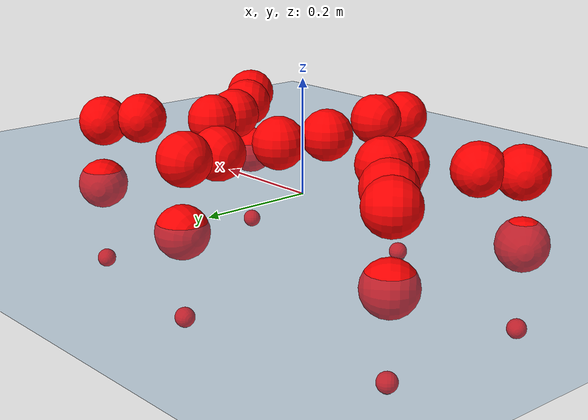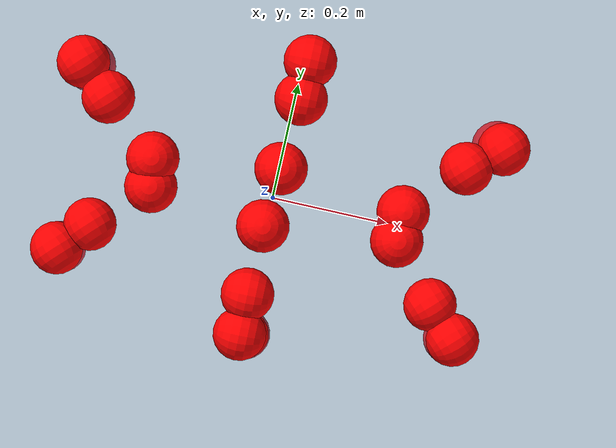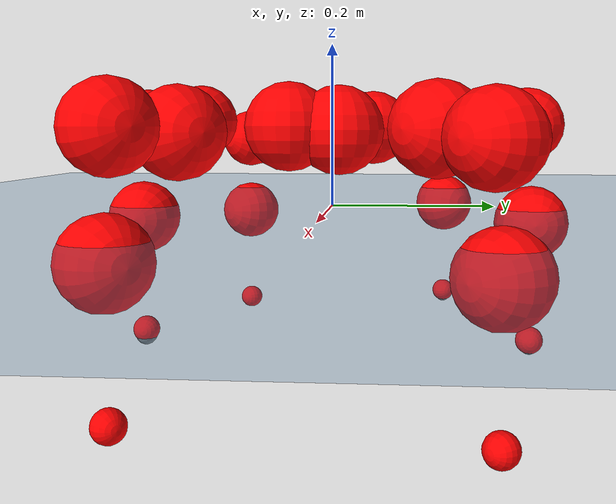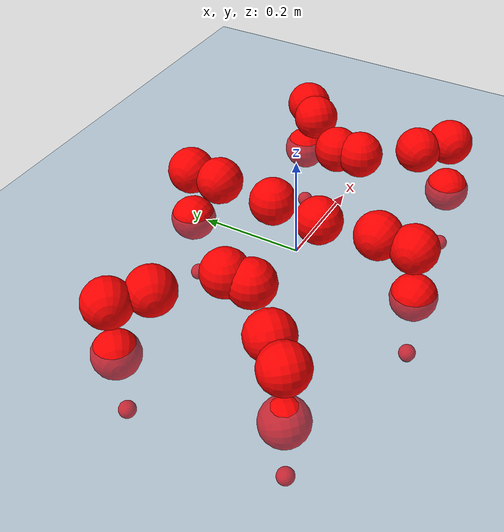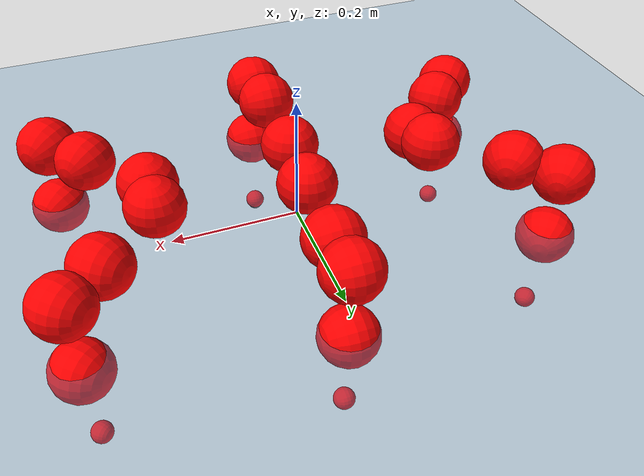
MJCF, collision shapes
<mujoco model="Golem">
  <compiler angle="radian" assetdir="assets" balanceinertia="true" inertiafromgeom="false"/>

  <option timestep="0.005" density="1.2" viscosity="2e-05"/>

  <size nkey="1"/>

  <visual>
    <quality shadowsize="8192"/>
    <map shadowclip="0.5"/>
  </visual>

  <default>
    <default class="/">
      <joint armature="0.01" damping="0.01" frictionloss="0.01"/>
      <geom contype="0" conaffinity="0" group="1" solref="-1000 -80"/>
      <site size="0.01 0.005 0.005" group="5"/>
      <general forcelimited="true" biastype="affine" gainprm="25" biasprm="0 -25 -0.5"/>
      <default class="visual">
        <geom type="mesh" group="2"/>
      </default>
      <default class="collision">
        <geom group="3"/>
      </default>
      <default class="foot">
        <geom size="0.01 0 0" condim="6" group="4" priority="1" solimp="0.015 1 0.01"/>
      </default>
      <default class="reward_collision_sphere">
        <geom group="5" rgba="1 0 0 1"/>
      </default>
    </default>
  </default>

  <asset>
    <texture type="skybox" colorspace="auto" name="//unnamed_texture_0" builtin="gradient" rgb1="0.95 0.95 0.95" rgb2="0.95 0.95 0.95" width="100" height="600"/>
    <texture type="2d" colorspace="auto" name="texplane" builtin="checker" rgb1="0.345 0.575 0.748" rgb2="0.345 0.575 0.748" markrgb="1 1 1" width="512" height="512"/>
    <material name="MatPlane" class="/" texture="texplane" texuniform="true" texrepeat="2 2" specular="0.9"/>
    <mesh name="body" class="/" file="body.stl" scale="0.001 0.001 0.001"/>
    <mesh name="coxa" class="/" file="coxa.stl" scale="0.001 0.001 0.001"/>
    <mesh name="femur" class="/" file="femur.stl" scale="0.001 0.001 0.001"/>
    <mesh name="tibia" class="/" file="tibia.stl" scale="0.001 0.001 0.001"/>
    <mesh name="tarsus" class="/" file="tarsus.stl" scale="0.001 0.001 0.001"/>
  </asset>

  <worldbody>
    <geom name="floor" class="/" size="100 100 0.125" type="plane" group="0" material="MatPlane"/>
    <light name="toplight_shadow" class="/" pos="0 0 5" dir="0.0990148 0.0990148 -0.990148" type="directional" ambient="0.04 0.04 0.04" diffuse="0.55 0.55 0.55" specular="0.12 0.12 0.12"/>
    <light name="toplight_fill" class="/" pos="0 0 5" dir="0.0990148 0.0990148 -0.990148" type="directional" castshadow="false" ambient="0.04 0.04 0.04" diffuse="0.3 0.3 0.3" specular="0.08 0.08 0.08"/>
    <body name="trunk" pos="0.00165774 0.000274985 0.00701693" quat="1 0.000435308 -0.000299474 -0.000554083">
      <inertial pos="0.000656954 -0.005029 0.00509284" quat="0.999989 -0.00384448 0.00242057 -0.000742237" mass="4.92864" diaginertia="0.0425979 0.00115576 0.0418862"/>
      <joint name="//unnamed_joint_0" type="free"/>
      <geom name="//unnamed_geom_1" class="/" pos="0 0 0.0864592" quat="1 0 0 0" type="mesh" rgba="0.9 0.9 0.9 1" mesh="body"/>
      <site name="imu" class="/" pos="0.182641 -0.00157205 0.106618" size="0.0112093"/>
      <camera name="track" class="/" pos="0 -1.31208 0" quat="0.707107 0.707107 0 0" mode="trackcom"/>
      <camera name="ego_camera" class="/" pos="0.176256 0 0.135093" quat="-0.5 -0.5 0.5 0.5"/>
      <body name="coxa_RR" pos="-0.234541 -0.0550213 0.082757" quat="0.384307 0.00397823 0.000354396 -0.923197">
        <inertial pos="0.00815204 0.00302893 0.00213919" quat="0.999571 0.0115423 -0.0139821 0.0229871" mass="0.272504" diaginertia="0.0459778 0.00122105 0.0485811"/>
        <joint name="coxa_joint_RR" class="/" pos="0 0 0" axis="0.00256697 -0.00769708 -0.999967" stiffness="0.00789133" range="-3.10871 3.17209" armature="0.0110466" damping="0" frictionloss="0.00790305"/>
        <geom name="//unnamed_geom_2" class="/" type="mesh" rgba="0.2 0.2 0.2 1" mesh="coxa"/>
        <geom name="//unnamed_geom_3" class="reward_collision_sphere" size="0.0448371" pos="-0.0406745 0 0"/>
        <body name="femur_RR" pos="0.0799839 -0.00199366 -0.00452154" quat="0.499907 -0.49998 0.500156 0.499958">
          <inertial pos="-0.00245238 0.000729542 -0.00689443" quat="1 -0.000350386 -0.000689163 -1.91705e-05" mass="0.287992" diaginertia="0.0471199 0.00125156 0.0505269"/>
          <joint name="femur_joint_RR" class="/" pos="0 0 0" axis="0.0295456 0.000560124 -0.999563" range="-3.12996 3.12554" armature="0.0120955" damping="0.0282563" frictionloss="0.0110735"/>
          <geom name="//unnamed_geom_4" class="/" type="mesh" rgba="0.9 0.9 0.9 1" mesh="femur"/>
          <geom name="//unnamed_geom_5" class="reward_collision_sphere" size="0.0448371"/>
          <body name="tibia_RR" pos="0.00411199 -0.0693128 0.00312979" quat="0.000100125 1 0.000104194 6.69623e-05">
            <inertial pos="0.00126839 -0.00604643 0.00697538" quat="0.999541 0.00809364 -0.00188744 0.0291333" mass="0.280331" diaginertia="0.0501299 0.00126835 0.0469066"/>
            <joint name="tibia_joint_RR" class="/" pos="0 0 0" axis="-0.00225303 -0.00858163 0.999961" stiffness="0.00679623" range="-3.14402 3.22146" armature="0.0103541" damping="0" frictionloss="0.0123399"/>
            <geom name="//unnamed_geom_6" class="/" type="mesh" rgba="0.2 0.2 0.2 1" mesh="tibia"/>
            <geom name="//unnamed_geom_7" class="reward_collision_sphere" size="0.0448371"/>
            <body name="tarsus_RR" pos="0.118421 0.00647387 0.00247647" quat="0.999995 -0.00194993 6.63126e-05 0.00259738">
              <inertial pos="0.0812803 0.00790303 -0.000608983" quat="0.503444 0.494178 0.50187 0.500459" mass="0.295979" diaginertia="0.0453925 0.00109854 0.0444248"/>
              <joint name="tarsus_joint_RR" class="/" pos="0 0 0" axis="0.00313657 -0.00709369 0.99997" stiffness="0.00396549" range="-3.15196 3.09403" armature="0.0116349" damping="0.0258785" frictionloss="0.0102047"/>
              <geom name="//unnamed_geom_8" class="/" type="mesh" rgba="0.9 0.9 0.9 1" mesh="tarsus"/>
              <geom name="foot_1" class="foot" size="0.0105209" pos="0.151852 0 0" quat="0 -0.707107 0 0.707107"/>
              <geom name="//unnamed_geom_10" class="reward_collision_sphere" size="0.0448371"/>
              <geom name="//unnamed_geom_11" class="reward_collision_sphere" size="0.0168139" pos="0.14575 0 0"/>
              <site name="foot_1" class="foot" pos="0.151852 0 0" quat="0 -0.707107 0 0.707107" size="0.0112093"/>
            </body>
          </body>
        </body>
      </body>
      <body name="coxa_RM" pos="-0.00793623 -0.0903998 0.0891584" quat="0.707285 -0.00180099 0.000796254 -0.706926">
        <inertial pos="0.000609668 0.00293074 0.00887551" quat="0.999998 -0.00147889 0.000790828 0.00146026" mass="0.294187" diaginertia="0.051089 0.00138027 0.0471106"/>
        <joint name="coxa_joint_RM" class="/" pos="0 0 0" axis="0.00268699 -0.00633377 -0.999976" range="-3.15372 3.1026" armature="0.0121461" damping="0.0103354" frictionloss="0.00947246"/>
        <geom name="//unnamed_geom_12" class="/" type="mesh" rgba="0.2 0.2 0.2 1" mesh="coxa"/>
        <geom name="//unnamed_geom_13" class="reward_collision_sphere" size="0.0448371" pos="-0.0406745 0 0"/>
        <body name="femur_RM" pos="0.0762755 7.89657e-06 0.00940383" quat="0.497624 -0.503097 0.498512 0.500749">
          <inertial pos="-0.00123297 0.00299212 0.00178357" quat="0.999311 0.0337649 0.0149065 -0.00392908" mass="0.285898" diaginertia="0.0425828 0.00124593 0.0442461"/>
          <joint name="femur_joint_RM" class="/" pos="0 0 0" axis="0.000128333 -3.05341e-05 -1" stiffness="0.00448386" range="-3.02997 3.02818" armature="0.00653758" damping="0" frictionloss="0.0101011"/>
          <geom name="//unnamed_geom_14" class="/" type="mesh" rgba="0.9 0.9 0.9 1" mesh="femur"/>
          <geom name="//unnamed_geom_15" class="reward_collision_sphere" size="0.0448371"/>
          <body name="tibia_RM" pos="0.00503381 -0.0678854 0.000822247" quat="-0.000164949 1 -7.47696e-05 -5.70863e-05">
            <inertial pos="8.61907e-05 0.0024433 0.00660116" quat="0.999656 -0.0191437 0.000840093 0.0178993" mass="0.326101" diaginertia="0.0487119 0.00129885 0.0441697"/>
            <joint name="tibia_joint_RM" class="/" pos="0 0 0" axis="0.00674817 0.00309522 0.999972" range="-3.03523 3.25101" armature="0.0143705" damping="0.0146975" frictionloss="0.0112537"/>
            <geom name="//unnamed_geom_16" class="/" type="mesh" rgba="0.2 0.2 0.2 1" mesh="tibia"/>
            <geom name="//unnamed_geom_17" class="reward_collision_sphere" size="0.0448371"/>
            <body name="tarsus_RM" pos="0.116046 0.0052669 -0.00789654" quat="1 0.000351402 0.000147282 -0.0002442">
              <inertial pos="0.0823617 0.00151116 0.00122102" quat="0.512167 0.508798 0.486405 0.492158" mass="0.282409" diaginertia="0.0451504 0.00121945 0.0444058"/>
              <joint name="tarsus_joint_RM" class="/" pos="0 0 0" axis="-0.00116348 0.00564198 0.999983" stiffness="0.0251044" range="-3.09655 2.95619" armature="0.0112398" damping="0.0419591" frictionloss="0.0103399"/>
              <geom name="//unnamed_geom_18" class="/" type="mesh" rgba="0.9 0.9 0.9 1" mesh="tarsus"/>
              <geom name="foot_2" class="foot" size="0.0138034" pos="0.151852 0 0" quat="0 -0.707107 0 0.707107"/>
              <geom name="//unnamed_geom_20" class="reward_collision_sphere" size="0.0448371"/>
              <geom name="//unnamed_geom_21" class="reward_collision_sphere" size="0.0168139" pos="0.14575 0 0"/>
              <site name="foot_2" class="foot" pos="0.151852 0 0" quat="0 -0.707107 0 0.707107" size="0.0112093"/>
            </body>
          </body>
        </body>
      </body>
      <body name="coxa_RF" pos="0.244933 -0.0542287 0.0917196" quat="0.922674 0.000260757 -0.000706917 -0.385579">
        <inertial pos="-0.00671809 0.0064057 -0.00152941" quat="0.999982 0.00478873 -0.00350702 0.000330043" mass="0.275799" diaginertia="0.0425338 0.00118546 0.0462939"/>
        <joint name="coxa_joint_RF" class="/" pos="0 0 0" axis="-0.0223879 -0.0200871 -0.999548" range="-3.15244 3.09845" armature="0.0106047" damping="0.0211053" frictionloss="0.0115753"/>
        <geom name="//unnamed_geom_22" class="/" type="mesh" rgba="0.2 0.2 0.2 1" mesh="coxa"/>
        <geom name="//unnamed_geom_23" class="reward_collision_sphere" size="0.0448371" pos="-0.0406745 0 0"/>
        <body name="femur_RF" pos="0.0797559 -0.00922854 -0.00569083" quat="0.501114 -0.497303 0.503195 0.498366">
          <inertial pos="0.00173747 -0.00239019 0.00118434" quat="0.999921 -0.0111656 0.00345361 0.00469498" mass="0.286924" diaginertia="0.0467947 0.00126724 0.0445439"/>
          <joint name="femur_joint_RF" class="/" pos="0 0 0" axis="0.00149419 -1.78307e-05 -0.999999" stiffness="0.020616" range="-3.17487 3.09194" armature="0.00984526" damping="0.00733891" frictionloss="0.010178"/>
          <geom name="//unnamed_geom_24" class="/" type="mesh" rgba="0.9 0.9 0.9 1" mesh="femur"/>
          <geom name="//unnamed_geom_25" class="reward_collision_sphere" size="0.0448371"/>
          <body name="tibia_RF" pos="-0.00558349 -0.0692729 0.000997055" quat="-0.000419364 1 4.27941e-05 0.000588864">
            <inertial pos="-0.00284782 0.0049643 0.000726324" quat="0.999989 0.000500207 0.00315929 0.00328556" mass="0.307847" diaginertia="0.0507134 0.00131515 0.0456092"/>
            <joint name="tibia_joint_RF" class="/" pos="0 0 0" axis="-0.00901374 0.0029886 0.999955" stiffness="0.0289922" range="-3.0992 3.24743" armature="0.0109747" damping="0.0571711" frictionloss="0.0110266"/>
            <geom name="//unnamed_geom_26" class="/" type="mesh" rgba="0.2 0.2 0.2 1" mesh="tibia"/>
            <geom name="//unnamed_geom_27" class="reward_collision_sphere" size="0.0448371"/>
            <body name="tarsus_RF" pos="0.118871 0.00652334 -0.00077583" quat="0.999998 0.00171703 -0.000443162 0.000781368">
              <inertial pos="0.0817113 0.00195803 0.000707995" quat="0.500419 0.499345 0.499082 0.501152" mass="0.283472" diaginertia="0.0465002 0.00114507 0.0472752"/>
              <joint name="tarsus_joint_RF" class="/" pos="0 0 0" axis="-0.00887762 0.00457842 0.99995" stiffness="0.00169119" range="-3.17325 3.11057" armature="0.012009" damping="0.00102135" frictionloss="0.0101166"/>
              <geom name="//unnamed_geom_28" class="/" type="mesh" rgba="0.9 0.9 0.9 1" mesh="tarsus"/>
              <geom name="foot_3" class="foot" size="0.0104954" pos="0.151852 0 0" quat="0 -0.707107 0 0.707107"/>
              <geom name="//unnamed_geom_30" class="reward_collision_sphere" size="0.0448371"/>
              <geom name="//unnamed_geom_31" class="reward_collision_sphere" size="0.0168139" pos="0.14575 0 0"/>
              <site name="foot_3" class="foot" pos="0.151852 0 0" quat="0 -0.707107 0 0.707107" size="0.0112093"/>
            </body>
          </body>
        </body>
      </body>
      <body name="coxa_LR" pos="-0.241312 0.0497849 0.0918166" quat="0.382448 3.11304e-05 -7.86515e-05 0.923977">
        <inertial pos="-0.000577802 0.00026573 0.00450838" quat="0.999802 -0.00301708 0.0195606 -0.00208922" mass="0.313119" diaginertia="0.0506757 0.001255 0.0483301"/>
        <joint name="coxa_joint_LR" class="/" pos="0 0 0" axis="0.0258898 0.00432404 -0.999655" range="-3.15576 3.10194" armature="0.0108933" damping="0.00864084" frictionloss="0.00857738"/>
        <geom name="//unnamed_geom_32" class="/" type="mesh" rgba="0.2 0.2 0.2 1" mesh="coxa"/>
        <geom name="//unnamed_geom_33" class="reward_collision_sphere" size="0.0448371" pos="-0.0406745 0 0"/>
        <body name="femur_LR" pos="0.0855572 0.00801337 -9.82641e-05" quat="0.499861 -0.498644 0.501363 0.500128">
          <inertial pos="-0.00225044 0.00133431 0.00817241" quat="0.999953 0.00354365 -0.00899348 0.00099159" mass="0.296911" diaginertia="0.0496474 0.00130926 0.0478407"/>
          <joint name="femur_joint_LR" class="/" pos="0 0 0" axis="-0.026795 -0.0319025 0.999132" stiffness="0.0060536" range="-3.13758 3.14227" armature="0.00950634" damping="0" frictionloss="0.0100927"/>
          <geom name="//unnamed_geom_34" class="/" type="mesh" rgba="0.9 0.9 0.9 1" mesh="femur"/>
          <geom name="//unnamed_geom_35" class="reward_collision_sphere" size="0.0448371"/>
          <body name="tibia_LR" pos="0.00481239 -0.0727473 0.00373905" quat="-0.000770725 1 3.19466e-05 -0.000573777">
            <inertial pos="-0.00192609 -0.00607834 -0.00216494" quat="0.999982 0.0003862 -0.00226199 0.00550989" mass="0.270415" diaginertia="0.0481226 0.00116044 0.0404455"/>
            <joint name="tibia_joint_LR" class="/" pos="0 0 0" axis="-0.0050122 -0.0455216 -0.998951" range="-3.24407 3.32377" armature="0.00640279" damping="0.0450371" frictionloss="0.00916864"/>
            <geom name="//unnamed_geom_36" class="/" type="mesh" rgba="0.2 0.2 0.2 1" mesh="tibia"/>
            <geom name="//unnamed_geom_37" class="reward_collision_sphere" size="0.0448371"/>
            <body name="tarsus_LR" pos="0.119882 0.00128863 0.000250142" quat="1 -0.000415102 -0.000145818 -7.26327e-05">
              <inertial pos="0.0731705 -0.00174967 0.00927565" quat="0.499925 0.499926 0.499909 0.50024" mass="0.282936" diaginertia="0.0427372 0.00116615 0.0450268"/>
              <joint name="tarsus_joint_LR" class="/" pos="0 0 0" axis="-0.00400011 0.00846362 -0.999956" range="-3.19786 3.18775" armature="0.0137729" damping="0" frictionloss="0.0110188"/>
              <geom name="//unnamed_geom_38" class="/" type="mesh" rgba="0.9 0.9 0.9 1" mesh="tarsus"/>
              <geom name="foot_4" class="foot" size="0.0118749" pos="0.151852 0 0" quat="0.707107 0 -0.707107 0"/>
              <geom name="//unnamed_geom_40" class="reward_collision_sphere" size="0.0448371"/>
              <geom name="//unnamed_geom_41" class="reward_collision_sphere" size="0.0168139" pos="0.14575 0 0"/>
              <site name="foot_4" class="foot" pos="0.151852 0 0" quat="0.707107 0 -0.707107 0" size="0.0112093"/>
            </body>
          </body>
        </body>
      </body>
      <body name="coxa_LM" pos="0.0008194 0.0914407 0.0903816" quat="0.706804 0.00029447 0.000121727 0.707409">
        <inertial pos="0.000655713 0.00671018 -0.00855723" quat="0.999968 -0.00743489 0.00282717 -0.000174281" mass="0.267515" diaginertia="0.04522 0.0011959 0.0453838"/>
        <joint name="coxa_joint_LM" class="/" pos="0 0 0" axis="0.0234598 -0.0126929 -0.999644" range="-3.17875 3.14224" armature="0.0158675" damping="0" frictionloss="0.0108893"/>
        <geom name="//unnamed_geom_42" class="/" type="mesh" rgba="0.2 0.2 0.2 1" mesh="coxa"/>
        <geom name="//unnamed_geom_43" class="reward_collision_sphere" size="0.0448371" pos="-0.0406745 0 0"/>
        <body name="femur_LM" pos="0.0799432 -0.00749589 0.00133177" quat="0.50046 -0.499896 0.499945 0.499698">
          <inertial pos="0.00800308 -0.00285111 0.00316894" quat="0.999945 0.00268975 0.00492537 -0.00880409" mass="0.30286" diaginertia="0.0497108 0.0012841 0.049597"/>
          <joint name="femur_joint_LM" class="/" pos="0 0 0" axis="0.0212688 0.0282075 0.999376" range="-3.13667 3.14983" armature="0.0103465" damping="0.0167376" frictionloss="0.00846935"/>
          <geom name="//unnamed_geom_44" class="/" type="mesh" rgba="0.9 0.9 0.9 1" mesh="femur"/>
          <geom name="//unnamed_geom_45" class="reward_collision_sphere" size="0.0448371"/>
          <body name="tibia_LM" pos="-0.00180251 -0.0652222 -0.00127364" quat="-0.000174966 1 0.000194574 5.2776e-05">
            <inertial pos="0.00147348 0.00144622 -0.00421211" quat="0.999699 0.00437151 0.00284308 -0.0239828" mass="0.301613" diaginertia="0.045318 0.00119809 0.0470069"/>
            <joint name="tibia_joint_LM" class="/" pos="0 0 0" axis="-0.00426102 -0.00411559 -0.999982" range="-3.09664 3.01373" armature="0.0124785" damping="0.0180462" frictionloss="0.0105688"/>
            <geom name="//unnamed_geom_46" class="/" type="mesh" rgba="0.2 0.2 0.2 1" mesh="tibia"/>
            <geom name="//unnamed_geom_47" class="reward_collision_sphere" size="0.0448371"/>
            <body name="tarsus_LM" pos="0.118802 0.00663878 0.00152996" quat="1 0.000257054 -9.47634e-05 0.000232666">
              <inertial pos="0.0739221 0.000288734 4.1133e-05" quat="0.500065 0.500048 0.499898 0.499989" mass="0.283125" diaginertia="0.0446043 0.00118784 0.0415055"/>
              <joint name="tarsus_joint_LM" class="/" pos="0 0 0" axis="0.000890365 -0.00819521 -0.999966" stiffness="0.0258868" range="-3.18205 3.10191" armature="0.0118966" damping="0.039905" frictionloss="0.0107981"/>
              <geom name="//unnamed_geom_48" class="/" type="mesh" rgba="0.9 0.9 0.9 1" mesh="tarsus"/>
              <geom name="foot_5" class="foot" size="0.0114814" pos="0.151852 0 0" quat="0.707107 0 -0.707107 0"/>
              <geom name="//unnamed_geom_50" class="reward_collision_sphere" size="0.0448371"/>
              <geom name="//unnamed_geom_51" class="reward_collision_sphere" size="0.0168139" pos="0.14575 0 0"/>
              <site name="foot_5" class="foot" pos="0.151852 0 0" quat="0.707107 0 -0.707107 0" size="0.0112093"/>
            </body>
          </body>
        </body>
      </body>
      <body name="coxa_LF" pos="0.245154 0.0535053 0.0882124" quat="0.924314 -0.000126874 -0.00019956 0.381633">
        <inertial pos="-0.00456804 -0.00235807 0.000161818" quat="0.999365 0.0156313 0.0205119 0.024588" mass="0.289415" diaginertia="0.0407846 0.00123469 0.0449899"/>
        <joint name="coxa_joint_LF" class="/" pos="0 0 0" axis="0.00228392 0.00103299 -0.999997" range="-3.09964 3.26408" armature="0.0122589" damping="0.0112801" frictionloss="0.0100039"/>
        <geom name="//unnamed_geom_52" class="/" type="mesh" rgba="0.2 0.2 0.2 1" mesh="coxa"/>
        <geom name="//unnamed_geom_53" class="reward_collision_sphere" size="0.0448371" pos="-0.0406745 0 0"/>
        <body name="femur_LF" pos="0.0874234 0.0045985 0.00114098" quat="0.500158 -0.499909 0.49993 0.500003">
          <inertial pos="0.0053806 -0.00417401 -0.00164568" quat="0.999993 0.00324302 0.00191108 -0.000506731" mass="0.280823" diaginertia="0.0489326 0.0012483 0.045347"/>
          <joint name="femur_joint_LF" class="/" pos="0 0 0" axis="0.0331745 -0.0104563 0.999395" stiffness="0.0200168" range="-3.00951 3.1798" armature="0.0113586" damping="0.0267354" frictionloss="0.0113776"/>
          <geom name="//unnamed_geom_54" class="/" type="mesh" rgba="0.9 0.9 0.9 1" mesh="femur"/>
          <geom name="//unnamed_geom_55" class="reward_collision_sphere" size="0.0448371"/>
          <body name="tibia_LF" pos="0.00767438 -0.0709327 -0.00650364" quat="-0.0011007 0.999998 -0.00167011 0.000248036">
            <inertial pos="0.00515465 8.05863e-05 -0.00168071" quat="0.998969 0.0218272 0.0337787 0.0210542" mass="0.253466" diaginertia="0.0476239 0.00124148 0.0447921"/>
            <joint name="tibia_joint_LF" class="/" pos="0 0 0" axis="-0.0068563 -0.000686635 -0.999976" stiffness="0.0201641" range="-3.15172 3.11439" armature="0.0123159" damping="0.0338148" frictionloss="0.0102345"/>
            <geom name="//unnamed_geom_56" class="/" type="mesh" rgba="0.2 0.2 0.2 1" mesh="tibia"/>
            <geom name="//unnamed_geom_57" class="reward_collision_sphere" size="0.0448371"/>
            <body name="tarsus_LF" pos="0.116502 0.00506543 -0.00561173" quat="1 -0.000696018 0.0003734 0.000118505">
              <inertial pos="0.0838824 -0.00138331 0.00271475" quat="0.499563 0.50432 0.497192 0.498897" mass="0.33219" diaginertia="0.0493952 0.00133192 0.0480417"/>
              <joint name="tarsus_joint_LF" class="/" pos="0 0 0" axis="0.00110134 -0.000777082 -0.999999" stiffness="0.0152916" range="-3.1559 3.10037" armature="0.0121746" damping="0" frictionloss="0.0122064"/>
              <geom name="//unnamed_geom_58" class="/" type="mesh" rgba="0.9 0.9 0.9 1" mesh="tarsus"/>
              <geom name="foot_6" class="foot" size="0.00964202" pos="0.151852 0 0" quat="0.707107 0 -0.707107 0"/>
              <geom name="//unnamed_geom_60" class="reward_collision_sphere" size="0.0448371"/>
              <geom name="//unnamed_geom_61" class="reward_collision_sphere" size="0.0168139" pos="0.14575 0 0"/>
              <site name="foot_6" class="foot" pos="0.151852 0 0" quat="0.707107 0 -0.707107 0" size="0.0112093"/>
            </body>
          </body>
        </body>
      </body>
    </body>
  </worldbody>

  <contact>
    <pair class="/" geom1="floor" geom2="foot_1" name="//unnamed_contact_0"/>
    <pair class="/" geom1="floor" geom2="foot_2" name="//unnamed_contact_1"/>
    <pair class="/" geom1="floor" geom2="foot_3" name="//unnamed_contact_2"/>
    <pair class="/" geom1="floor" geom2="foot_4" name="//unnamed_contact_3"/>
    <pair class="/" geom1="floor" geom2="foot_5" name="//unnamed_contact_4"/>
    <pair class="/" geom1="floor" geom2="foot_6" name="//unnamed_contact_5"/>
  </contact>

  <actuator>
    <general name="coxa_joint_RR" class="/" joint="coxa_joint_RR" forcerange="-7.52875 7.52875" gainprm="27.3284" biasprm="0 -27.3284 -0.495576"/>
    <general name="femur_joint_RR" class="/" joint="femur_joint_RR" forcerange="-7.22968 7.22968" gainprm="27.3284" biasprm="0 -27.3284 -0.495576"/>
    <general name="tibia_joint_RR" class="/" joint="tibia_joint_RR" forcerange="-10.0093 10.0093" gainprm="27.3284" biasprm="0 -27.3284 -0.495576"/>
    <general name="tarsus_joint_RR" class="/" joint="tarsus_joint_RR" forcerange="-7.99529 7.99529" gainprm="27.3284" biasprm="0 -27.3284 -0.495576"/>
    <general name="coxa_joint_RM" class="/" joint="coxa_joint_RM" forcerange="-5.36068 5.36068" gainprm="27.3284" biasprm="0 -27.3284 -0.495576"/>
    <general name="femur_joint_RM" class="/" joint="femur_joint_RM" forcerange="-7.54994 7.54994" gainprm="27.3284" biasprm="0 -27.3284 -0.495576"/>
    <general name="tibia_joint_RM" class="/" joint="tibia_joint_RM" forcerange="-7.9333 7.9333" gainprm="27.3284" biasprm="0 -27.3284 -0.495576"/>
    <general name="tarsus_joint_RM" class="/" joint="tarsus_joint_RM" forcerange="-10.0295 10.0295" gainprm="27.3284" biasprm="0 -27.3284 -0.495576"/>
    <general name="coxa_joint_RF" class="/" joint="coxa_joint_RF" forcerange="-6.56255 6.56255" gainprm="27.3284" biasprm="0 -27.3284 -0.495576"/>
    <general name="femur_joint_RF" class="/" joint="femur_joint_RF" forcerange="-8.07605 8.07605" gainprm="27.3284" biasprm="0 -27.3284 -0.495576"/>
    <general name="tibia_joint_RF" class="/" joint="tibia_joint_RF" forcerange="-7.73937 7.73937" gainprm="27.3284" biasprm="0 -27.3284 -0.495576"/>
    <general name="tarsus_joint_RF" class="/" joint="tarsus_joint_RF" forcerange="-8.20606 8.20606" gainprm="27.3284" biasprm="0 -27.3284 -0.495576"/>
    <general name="coxa_joint_LR" class="/" joint="coxa_joint_LR" forcerange="-6.04016 6.04016" gainprm="27.3284" biasprm="0 -27.3284 -0.495576"/>
    <general name="femur_joint_LR" class="/" joint="femur_joint_LR" forcerange="-8.08846 8.08846" gainprm="27.3284" biasprm="0 -27.3284 -0.495576"/>
    <general name="tibia_joint_LR" class="/" joint="tibia_joint_LR" forcerange="-6.85433 6.85433" gainprm="27.3284" biasprm="0 -27.3284 -0.495576"/>
    <general name="tarsus_joint_LR" class="/" joint="tarsus_joint_LR" forcerange="-5.84362 5.84362" gainprm="27.3284" biasprm="0 -27.3284 -0.495576"/>
    <general name="coxa_joint_LM" class="/" joint="coxa_joint_LM" forcerange="-9.93652 9.93652" gainprm="27.3284" biasprm="0 -27.3284 -0.495576"/>
    <general name="femur_joint_LM" class="/" joint="femur_joint_LM" forcerange="-8.26654 8.26654" gainprm="27.3284" biasprm="0 -27.3284 -0.495576"/>
    <general name="tibia_joint_LM" class="/" joint="tibia_joint_LM" forcerange="-6.16036 6.16036" gainprm="27.3284" biasprm="0 -27.3284 -0.495576"/>
    <general name="tarsus_joint_LM" class="/" joint="tarsus_joint_LM" forcerange="-5.46837 5.46837" gainprm="27.3284" biasprm="0 -27.3284 -0.495576"/>
    <general name="coxa_joint_LF" class="/" joint="coxa_joint_LF" forcerange="-9.44386 9.44386" gainprm="27.3284" biasprm="0 -27.3284 -0.495576"/>
    <general name="femur_joint_LF" class="/" joint="femur_joint_LF" forcerange="-9.36125 9.36125" gainprm="27.3284" biasprm="0 -27.3284 -0.495576"/>
    <general name="tibia_joint_LF" class="/" joint="tibia_joint_LF" forcerange="-8.14434 8.14434" gainprm="27.3284" biasprm="0 -27.3284 -0.495576"/>
    <general name="tarsus_joint_LF" class="/" joint="tarsus_joint_LF" forcerange="-8.63463 8.63463" gainprm="27.3284" biasprm="0 -27.3284 -0.495576"/>
  </actuator>

  <sensor>
    <gyro site="imu" name="imu_angular_velocity"/>
    <velocimeter site="imu" name="imu_linear_velocity"/>
    <framelinvel objtype="site" objname="foot_1" name="foot_1_global_linear_velocity"/>
    <framelinvel objtype="site" objname="foot_2" name="foot_2_global_linear_velocity"/>
    <framelinvel objtype="site" objname="foot_3" name="foot_3_global_linear_velocity"/>
    <framelinvel objtype="site" objname="foot_4" name="foot_4_global_linear_velocity"/>
    <framelinvel objtype="site" objname="foot_5" name="foot_5_global_linear_velocity"/>
    <framelinvel objtype="site" objname="foot_6" name="foot_6_global_linear_velocity"/>
  </sensor>

  <keyframe>
    <key name="home" qpos="0 0 0.1457 1 0 0 0 0 0 0 0 0 0 0 0 0 0 0 0 0 0 0 0 0 0 0 0 0 0 0 0"/>
  </keyframe>
</mujoco>
